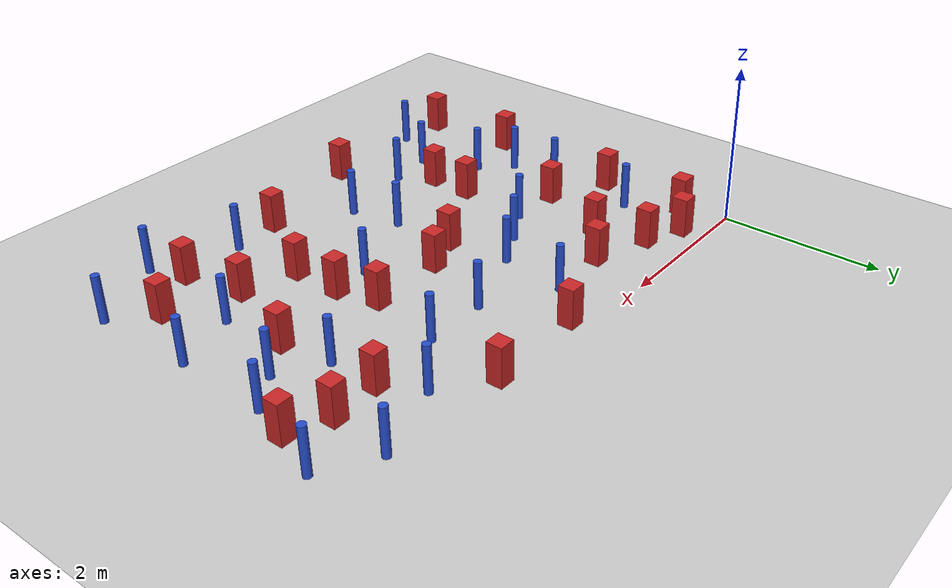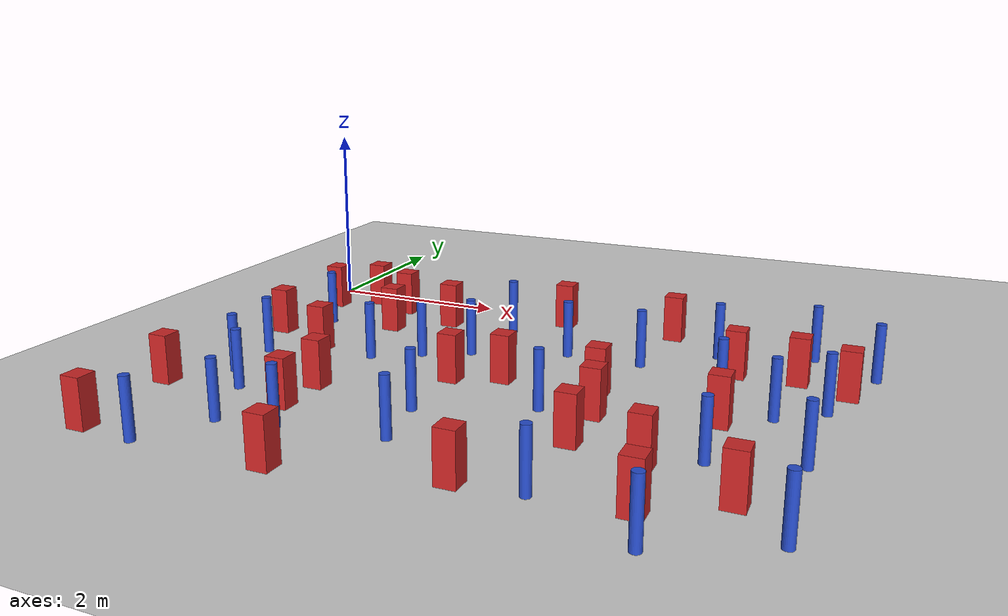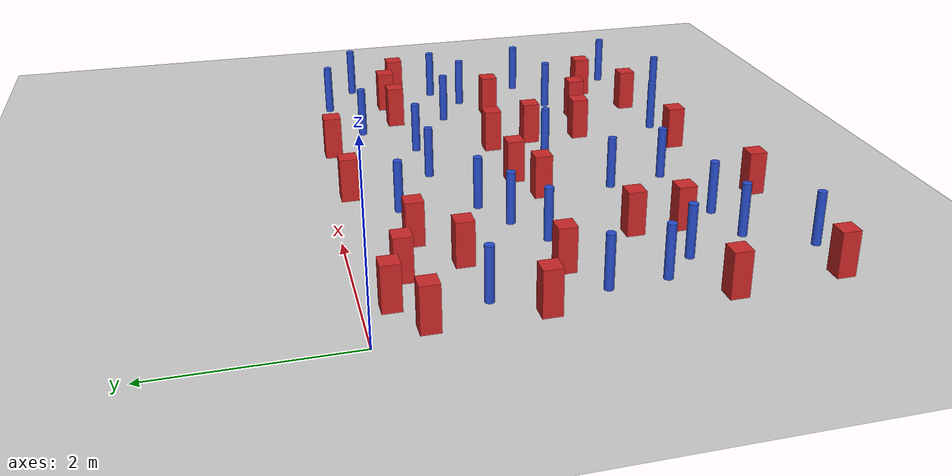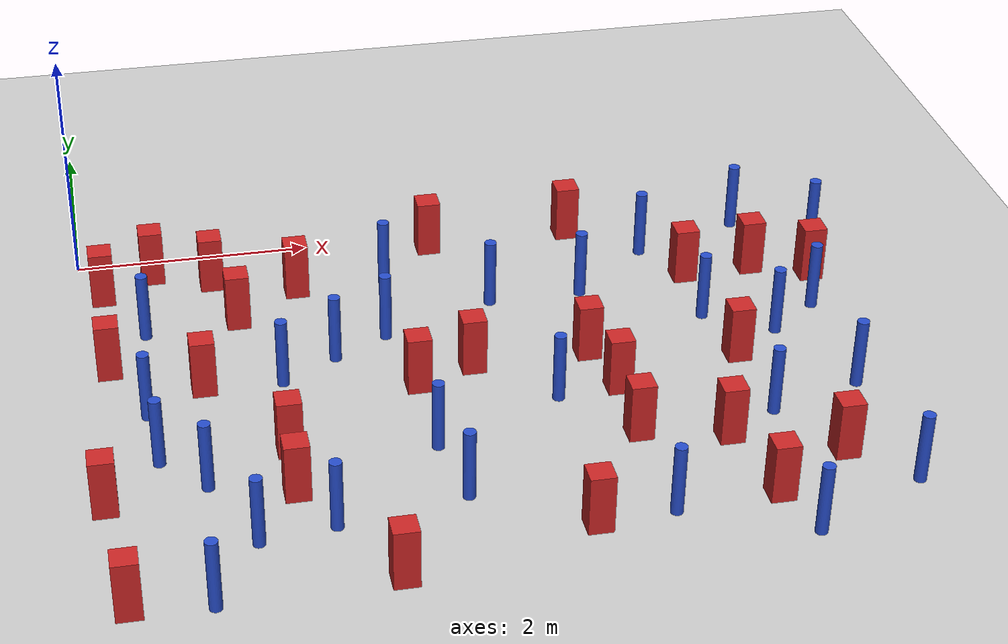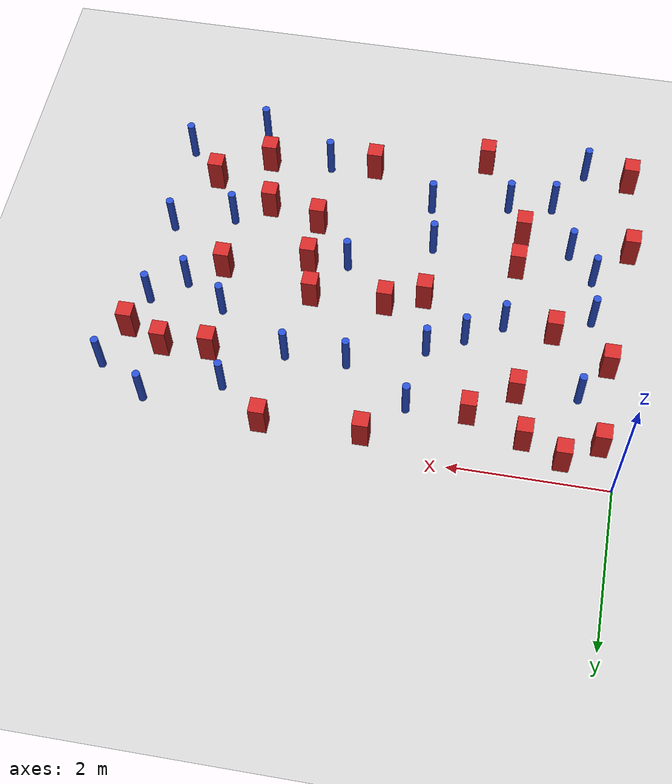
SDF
<sdf version="1.6">
 <world name="default">
  <model name="ground_plane">
   <static>1</static>
   <link name="link">
    <collision name="collision">
     <geometry><plane><normal>0 0 1</normal><size>100 100</size></plane></geometry>
     <surface><friction><ode><mu>100</mu><mu2>50</mu2></ode></friction></surface>
    </collision>
    <visual name="visual">
     <cast_shadows>0</cast_shadows>
     <geometry><plane><normal>0 0 1</normal><size>100 100</size></plane></geometry>
     <material>
      <ambient>1.0 1.0 1.0 1.0</ambient>
      <diffuse>0.8 0.8 0.8 1.0</diffuse>
      <specular>0.01 0.01 0.01 1.000000</specular>
     </material>
    </visual>
   </link>
  </model>
  <model name="pole_obstacle4">
   <static>true</static>
   <pose>6.12299116142 -4.23294634951 -9.47619616065e-06 5.49618799737e-07 2.36310414037e-07 -1.55090534814e-07</pose>
   <link name="link">
    <pose>0 0 0.3 0 -0 0</pose>
    <inertial>
     <mass>1</mass>
     <inertia><ixx>0.145833</ixx><ixy>0</ixy><ixz>0</ixz><iyy>0.145833</iyy><iyz>0</iyz><izz>0.125</izz></inertia>
    </inertial>
    <collision name="collision">
     <geometry><cylinder><radius>0.05</radius><length>.6</length></cylinder></geometry>
    </collision>
    <visual name="visual">
     <geometry><cylinder><radius>0.05</radius><length>.6</length></cylinder></geometry>
     <material>
      <script><name>Gazebo/Blue</name><uri>file://media/materials/scripts/gazebo.material</uri></script>
     </material>
    </visual>
   </link>
  </model>
  <model name="square_post_obstacle5">
   <static>true</static>
   <pose>5.68144355418 -3.79377628186 -6.11067671241e-07 -5.50515727128e-06 -8.79689657224e-07 2.37013304536e-05</pose>
   <link name="link">
    <pose>0 0 0.25 0 -0 0</pose>
    <inertial>
     <mass>100</mass>
     <inertia>
      <ixx>0.166667</ixx>
      <ixy>0</ixy>
      <ixz>0</ixz>
      <iyy>0.166667</iyy>
      <iyz>0</iyz>
      <izz>0.166667</izz>
     </inertia>
    </inertial>
    <collision name="collision"><geometry><box><size>.2 .2 .5</size></box></geometry></collision>
    <visual name="visual">
     <geometry><box><size>.2 .2 .5</size></box></geometry>
     <material>
      <script><name>Gazebo/Red</name><uri>file://media/materials/scripts/gazebo.material</uri></script>
     </material>
    </visual>
   </link>
  </model>
  <model name="pole_obstacle11">
   <static>true</static>
   <pose>5.85307790812 -0.320496310252 -9.47619616065e-06 5.49618799737e-07 2.36310414057e-07 -1.55090534802e-07</pose>
   <link name="link">
    <pose>0 0 0.3 0 -0 0</pose>
    <inertial>
     <mass>1</mass>
     <inertia><ixx>0.145833</ixx><ixy>0</ixy><ixz>0</ixz><iyy>0.145833</iyy><iyz>0</iyz><izz>0.125</izz></inertia>
    </inertial>
    <collision name="collision">
     <geometry><cylinder><radius>0.05</radius><length>.6</length></cylinder></geometry>
    </collision>
    <visual name="visual">
     <geometry><cylinder><radius>0.05</radius><length>.6</length></cylinder></geometry>
     <material>
      <script><name>Gazebo/Blue</name><uri>file://media/materials/scripts/gazebo.material</uri></script>
     </material>
    </visual>
   </link>
  </model>
  <model name="pole_obstacle18">
   <static>true</static>
   <pose>0.443897903303 -2.33822580704 -9.47619616065e-06 5.49618799738e-07 2.36310414065e-07 -1.55090534798e-07</pose>
   <link name="link">
    <pose>0 0 0.3 0 -0 0</pose>
    <inertial>
     <mass>1</mass>
     <inertia><ixx>0.145833</ixx><ixy>0</ixy><ixz>0</ixz><iyy>0.145833</iyy><iyz>0</iyz><izz>0.125</izz></inertia>
    </inertial>
    <collision name="collision">
     <geometry><cylinder><radius>0.05</radius><length>.6</length></cylinder></geometry>
    </collision>
    <visual name="visual">
     <geometry><cylinder><radius>0.05</radius><length>.6</length></cylinder></geometry>
     <material>
      <script><name>Gazebo/Blue</name><uri>file://media/materials/scripts/gazebo.material</uri></script>
     </material>
    </visual>
   </link>
  </model>
  <model name="square_post_obstacle15">
   <static>true</static>
   <pose>4.86988007356 -3.44141028213 -6.11067671241e-07 -5.50515727128e-06 -8.79689657224e-07 2.37013304536e-05</pose>
   <link name="link">
    <pose>0 0 0.25 0 -0 0</pose>
    <inertial>
     <mass>100</mass>
     <inertia>
      <ixx>0.166667</ixx>
      <ixy>0</ixy>
      <ixz>0</ixz>
      <iyy>0.166667</iyy>
      <iyz>0</iyz>
      <izz>0.166667</izz>
     </inertia>
    </inertial>
    <collision name="collision"><geometry><box><size>.2 .2 .5</size></box></geometry></collision>
    <visual name="visual">
     <geometry><box><size>.2 .2 .5</size></box></geometry>
     <material>
      <script><name>Gazebo/Red</name><uri>file://media/materials/scripts/gazebo.material</uri></script>
     </material>
    </visual>
   </link>
  </model>
  <model name="pole_obstacle21">
   <static>true</static>
   <pose>3.43718907386 -1.19930533443 -9.47619616065e-06 5.49618799737e-07 2.36310414072e-07 -1.55090534793e-07</pose>
   <link name="link">
    <pose>0 0 0.3 0 -0 0</pose>
    <inertial>
     <mass>1</mass>
     <inertia><ixx>0.145833</ixx><ixy>0</ixy><ixz>0</ixz><iyy>0.145833</iyy><iyz>0</iyz><izz>0.125</izz></inertia>
    </inertial>
    <collision name="collision">
     <geometry><cylinder><radius>0.05</radius><length>.6</length></cylinder></geometry>
    </collision>
    <visual name="visual">
     <geometry><cylinder><radius>0.05</radius><length>.6</length></cylinder></geometry>
     <material>
      <script><name>Gazebo/Blue</name><uri>file://media/materials/scripts/gazebo.material</uri></script>
     </material>
    </visual>
   </link>
  </model>
  <model name="pole_obstacle26">
   <static>true</static>
   <pose>1.7126449318 -3.97893781588 -9.47619616065e-06 5.49618799737e-07 2.36310414067e-07 -1.55090534795e-07</pose>
   <link name="link">
    <pose>0 0 0.3 0 -0 0</pose>
    <inertial>
     <mass>1</mass>
     <inertia><ixx>0.145833</ixx><ixy>0</ixy><ixz>0</ixz><iyy>0.145833</iyy><iyz>0</iyz><izz>0.125</izz></inertia>
    </inertial>
    <collision name="collision">
     <geometry><cylinder><radius>0.05</radius><length>.6</length></cylinder></geometry>
    </collision>
    <visual name="visual">
     <geometry><cylinder><radius>0.05</radius><length>.6</length></cylinder></geometry>
     <material>
      <script><name>Gazebo/Blue</name><uri>file://media/materials/scripts/gazebo.material</uri></script>
     </material>
    </visual>
   </link>
  </model>
  <model name="square_post_obstacle20">
   <static>true</static>
   <pose>5.17714673564 -1.09577643216 -6.11067671241e-07 -5.50515727128e-06 -8.79689657224e-07 2.37013304536e-05</pose>
   <link name="link">
    <pose>0 0 0.25 0 -0 0</pose>
    <inertial>
     <mass>100</mass>
     <inertia>
      <ixx>0.166667</ixx>
      <ixy>0</ixy>
      <ixz>0</ixz>
      <iyy>0.166667</iyy>
      <iyz>0</iyz>
      <izz>0.166667</izz>
     </inertia>
    </inertial>
    <collision name="collision"><geometry><box><size>.2 .2 .5</size></box></geometry></collision>
    <visual name="visual">
     <geometry><box><size>.2 .2 .5</size></box></geometry>
     <material>
      <script><name>Gazebo/Red</name><uri>file://media/materials/scripts/gazebo.material</uri></script>
     </material>
    </visual>
   </link>
  </model>
  <model name="pole_obstacle30">
   <static>true</static>
   <pose>3.68711121162 -2.68514495971 -9.47619616065e-06 5.49618799737e-07 2.36310414051e-07 -1.55090534807e-07</pose>
   <link name="link">
    <pose>0 0 0.3 0 -0 0</pose>
    <inertial>
     <mass>1</mass>
     <inertia><ixx>0.145833</ixx><ixy>0</ixy><ixz>0</ixz><iyy>0.145833</iyy><iyz>0</iyz><izz>0.125</izz></inertia>
    </inertial>
    <collision name="collision">
     <geometry><cylinder><radius>0.05</radius><length>.6</length></cylinder></geometry>
    </collision>
    <visual name="visual">
     <geometry><cylinder><radius>0.05</radius><length>.6</length></cylinder></geometry>
     <material>
      <script><name>Gazebo/Blue</name><uri>file://media/materials/scripts/gazebo.material</uri></script>
     </material>
    </visual>
   </link>
  </model>
  <model name="square_post_obstacle25">
   <static>true</static>
   <pose>4.06509293882 -2.11081079121 -6.11067671241e-07 -5.50515727128e-06 -8.79689657224e-07 2.37013304536e-05</pose>
   <link name="link">
    <pose>0 0 0.25 0 -0 0</pose>
    <inertial>
     <mass>100</mass>
     <inertia>
      <ixx>0.166667</ixx>
      <ixy>0</ixy>
      <ixz>0</ixz>
      <iyy>0.166667</iyy>
      <iyz>0</iyz>
      <izz>0.166667</izz>
     </inertia>
    </inertial>
    <collision name="collision"><geometry><box><size>.2 .2 .5</size></box></geometry></collision>
    <visual name="visual">
     <geometry><box><size>.2 .2 .5</size></box></geometry>
     <material>
      <script><name>Gazebo/Red</name><uri>file://media/materials/scripts/gazebo.material</uri></script>
     </material>
    </visual>
   </link>
  </model>
  <model name="pole_obstacle44">
   <static>true</static>
   <pose>0.751017771333 -4.70467274719 -9.47619616065e-06 5.49618799737e-07 2.36310414065e-07 -1.55090534796e-07</pose>
   <link name="link">
    <pose>0 0 0.3 0 -0 0</pose>
    <inertial>
     <mass>1</mass>
     <inertia><ixx>0.145833</ixx><ixy>0</ixy><ixz>0</ixz><iyy>0.145833</iyy><iyz>0</iyz><izz>0.125</izz></inertia>
    </inertial>
    <collision name="collision">
     <geometry><cylinder><radius>0.05</radius><length>.6</length></cylinder></geometry>
    </collision>
    <visual name="visual">
     <geometry><cylinder><radius>0.05</radius><length>.6</length></cylinder></geometry>
     <material>
      <script><name>Gazebo/Blue</name><uri>file://media/materials/scripts/gazebo.material</uri></script>
     </material>
    </visual>
   </link>
  </model>
  <model name="pole_obstacle50">
   <static>true</static>
   <pose>2.7331316334 -3.80267862826 -9.47619616065e-06 5.49618799737e-07 2.36310414051e-07 -1.55090534807e-07</pose>
   <link name="link">
    <pose>0 0 0.3 0 -0 0</pose>
    <inertial>
     <mass>1</mass>
     <inertia><ixx>0.145833</ixx><ixy>0</ixy><ixz>0</ixz><iyy>0.145833</iyy><iyz>0</iyz><izz>0.125</izz></inertia>
    </inertial>
    <collision name="collision">
     <geometry><cylinder><radius>0.05</radius><length>.6</length></cylinder></geometry>
    </collision>
    <visual name="visual">
     <geometry><cylinder><radius>0.05</radius><length>.6</length></cylinder></geometry>
     <material>
      <script><name>Gazebo/Blue</name><uri>file://media/materials/scripts/gazebo.material</uri></script>
     </material>
    </visual>
   </link>
  </model>
  <model name="square_post_obstacle43">
   <static>true</static>
   <pose>2.09700057839 -4.65238828174 -6.11067671241e-07 -5.50515727128e-06 -8.79689657224e-07 2.37013304536e-05</pose>
   <link name="link">
    <pose>0 0 0.25 0 -0 0</pose>
    <inertial>
     <mass>100</mass>
     <inertia>
      <ixx>0.166667</ixx>
      <ixy>0</ixy>
      <ixz>0</ixz>
      <iyy>0.166667</iyy>
      <iyz>0</iyz>
      <izz>0.166667</izz>
     </inertia>
    </inertial>
    <collision name="collision"><geometry><box><size>.2 .2 .5</size></box></geometry></collision>
    <visual name="visual">
     <geometry><box><size>.2 .2 .5</size></box></geometry>
     <material>
      <script><name>Gazebo/Red</name><uri>file://media/materials/scripts/gazebo.material</uri></script>
     </material>
    </visual>
   </link>
  </model>
  <model name="pole_obstacle62">
   <static>true</static>
   <pose>6.09280847344 -2.93658102104 -9.47619616065e-06 5.49618799738e-07 2.36310414051e-07 -1.55090534805e-07</pose>
   <link name="link">
    <pose>0 0 0.3 0 -0 0</pose>
    <inertial>
     <mass>1</mass>
     <inertia><ixx>0.145833</ixx><ixy>0</ixy><ixz>0</ixz><iyy>0.145833</iyy><iyz>0</iyz><izz>0.125</izz></inertia>
    </inertial>
    <collision name="collision">
     <geometry><cylinder><radius>0.05</radius><length>.6</length></cylinder></geometry>
    </collision>
    <visual name="visual">
     <geometry><cylinder><radius>0.05</radius><length>.6</length></cylinder></geometry>
     <material>
      <script><name>Gazebo/Blue</name><uri>file://media/materials/scripts/gazebo.material</uri></script>
     </material>
    </visual>
   </link>
  </model>
  <model name="square_post_obstacle48">
   <static>true</static>
   <pose>0.0523614347683 -3.46284286052 -6.11067671241e-07 -5.50515727128e-06 -8.79689657224e-07 2.37013304536e-05</pose>
   <link name="link">
    <pose>0 0 0.25 0 -0 0</pose>
    <inertial>
     <mass>100</mass>
     <inertia>
      <ixx>0.166667</ixx>
      <ixy>0</ixy>
      <ixz>0</ixz>
      <iyy>0.166667</iyy>
      <iyz>0</iyz>
      <izz>0.166667</izz>
     </inertia>
    </inertial>
    <collision name="collision"><geometry><box><size>.2 .2 .5</size></box></geometry></collision>
    <visual name="visual">
     <geometry><box><size>.2 .2 .5</size></box></geometry>
     <material>
      <script><name>Gazebo/Red</name><uri>file://media/materials/scripts/gazebo.material</uri></script>
     </material>
    </visual>
   </link>
  </model>
  <model name="pole_obstacle63">
   <static>true</static>
   <pose>4.91096232586 -0.634206017573 -9.47619616065e-06 5.49618799737e-07 2.36310414061e-07 -1.550905348e-07</pose>
   <link name="link">
    <pose>0 0 0.3 0 -0 0</pose>
    <inertial>
     <mass>1</mass>
     <inertia><ixx>0.145833</ixx><ixy>0</ixy><ixz>0</ixz><iyy>0.145833</iyy><iyz>0</iyz><izz>0.125</izz></inertia>
    </inertial>
    <collision name="collision">
     <geometry><cylinder><radius>0.05</radius><length>.6</length></cylinder></geometry>
    </collision>
    <visual name="visual">
     <geometry><cylinder><radius>0.05</radius><length>.6</length></cylinder></geometry>
     <material>
      <script><name>Gazebo/Blue</name><uri>file://media/materials/scripts/gazebo.material</uri></script>
     </material>
    </visual>
   </link>
  </model>
  <model name="pole_obstacle74">
   <static>true</static>
   <pose>0.510037440502 -1.18547803396 -9.47619616065e-06 5.49618799737e-07 2.36310414053e-07 -1.55090534803e-07</pose>
   <link name="link">
    <pose>0 0 0.3 0 -0 0</pose>
    <inertial>
     <mass>1</mass>
     <inertia><ixx>0.145833</ixx><ixy>0</ixy><ixz>0</ixz><iyy>0.145833</iyy><iyz>0</iyz><izz>0.125</izz></inertia>
    </inertial>
    <collision name="collision">
     <geometry><cylinder><radius>0.05</radius><length>.6</length></cylinder></geometry>
    </collision>
    <visual name="visual">
     <geometry><cylinder><radius>0.05</radius><length>.6</length></cylinder></geometry>
     <material>
      <script><name>Gazebo/Blue</name><uri>file://media/materials/scripts/gazebo.material</uri></script>
     </material>
    </visual>
   </link>
  </model>
  <model name="pole_obstacle76">
   <static>true</static>
   <pose>0.489646249229 -2.96681583218 -9.47619616065e-06 5.49618799738e-07 2.36310414066e-07 -1.55090534797e-07</pose>
   <link name="link">
    <pose>0 0 0.3 0 -0 0</pose>
    <inertial>
     <mass>1</mass>
     <inertia><ixx>0.145833</ixx><ixy>0</ixy><ixz>0</ixz><iyy>0.145833</iyy><iyz>0</iyz><izz>0.125</izz></inertia>
    </inertial>
    <collision name="collision">
     <geometry><cylinder><radius>0.05</radius><length>.6</length></cylinder></geometry>
    </collision>
    <visual name="visual">
     <geometry><cylinder><radius>0.05</radius><length>.6</length></cylinder></geometry>
     <material>
      <script><name>Gazebo/Blue</name><uri>file://media/materials/scripts/gazebo.material</uri></script>
     </material>
    </visual>
   </link>
  </model>
  <model name="square_post_obstacle67">
   <static>true</static>
   <pose>1.48921113778 -2.9828897796 -6.11067671241e-07 -5.50515727128e-06 -8.79689657224e-07 2.37013304536e-05</pose>
   <link name="link">
    <pose>0 0 0.25 0 -0 0</pose>
    <inertial>
     <mass>100</mass>
     <inertia>
      <ixx>0.166667</ixx>
      <ixy>0</ixy>
      <ixz>0</ixz>
      <iyy>0.166667</iyy>
      <iyz>0</iyz>
      <izz>0.166667</izz>
     </inertia>
    </inertial>
    <collision name="collision"><geometry><box><size>.2 .2 .5</size></box></geometry></collision>
    <visual name="visual">
     <geometry><box><size>.2 .2 .5</size></box></geometry>
     <material>
      <script><name>Gazebo/Red</name><uri>file://media/materials/scripts/gazebo.material</uri></script>
     </material>
    </visual>
   </link>
  </model>
  <model name="pole_obstacle86">
   <static>true</static>
   <pose>2.01733660389 -1.80045225481 -9.47619616065e-06 5.49618799737e-07 2.36310414066e-07 -1.55090534797e-07</pose>
   <link name="link">
    <pose>0 0 0.3 0 -0 0</pose>
    <inertial>
     <mass>1</mass>
     <inertia><ixx>0.145833</ixx><ixy>0</ixy><ixz>0</ixz><iyy>0.145833</iyy><iyz>0</iyz><izz>0.125</izz></inertia>
    </inertial>
    <collision name="collision">
     <geometry><cylinder><radius>0.05</radius><length>.6</length></cylinder></geometry>
    </collision>
    <visual name="visual">
     <geometry><cylinder><radius>0.05</radius><length>.6</length></cylinder></geometry>
     <material>
      <script><name>Gazebo/Blue</name><uri>file://media/materials/scripts/gazebo.material</uri></script>
     </material>
    </visual>
   </link>
  </model>
  <model name="square_post_obstacle81">
   <static>true</static>
   <pose>5.27068209981 -2.3657500207 -6.11067671241e-07 -5.50515727128e-06 -8.79689657224e-07 2.37013304536e-05</pose>
   <link name="link">
    <pose>0 0 0.25 0 -0 0</pose>
    <inertial>
     <mass>100</mass>
     <inertia>
      <ixx>0.166667</ixx>
      <ixy>0</ixy>
      <ixz>0</ixz>
      <iyy>0.166667</iyy>
      <iyz>0</iyz>
      <izz>0.166667</izz>
     </inertia>
    </inertial>
    <collision name="collision"><geometry><box><size>.2 .2 .5</size></box></geometry></collision>
    <visual name="visual">
     <geometry><box><size>.2 .2 .5</size></box></geometry>
     <material>
      <script><name>Gazebo/Red</name><uri>file://media/materials/scripts/gazebo.material</uri></script>
     </material>
    </visual>
   </link>
  </model>
  <model name="square_post_obstacle85">
   <static>true</static>
   <pose>4.19037227456 -2.63217803443 -6.11067671241e-07 -5.50515727128e-06 -8.79689657224e-07 2.37013304536e-05</pose>
   <link name="link">
    <pose>0 0 0.25 0 -0 0</pose>
    <inertial>
     <mass>100</mass>
     <inertia>
      <ixx>0.166667</ixx>
      <ixy>0</ixy>
      <ixz>0</ixz>
      <iyy>0.166667</iyy>
      <iyz>0</iyz>
      <izz>0.166667</izz>
     </inertia>
    </inertial>
    <collision name="collision"><geometry><box><size>.2 .2 .5</size></box></geometry></collision>
    <visual name="visual">
     <geometry><box><size>.2 .2 .5</size></box></geometry>
     <material>
      <script><name>Gazebo/Red</name><uri>file://media/materials/scripts/gazebo.material</uri></script>
     </material>
    </visual>
   </link>
  </model>
  <model name="square_post_obstacle89">
   <static>true</static>
   <pose>1.83401991134 -0.719261645037 -6.11067671241e-07 -5.50515727128e-06 -8.79689657224e-07 2.37013304536e-05</pose>
   <link name="link">
    <pose>0 0 0.25 0 -0 0</pose>
    <inertial>
     <mass>100</mass>
     <inertia>
      <ixx>0.166667</ixx>
      <ixy>0</ixy>
      <ixz>0</ixz>
      <iyy>0.166667</iyy>
      <iyz>0</iyz>
      <izz>0.166667</izz>
     </inertia>
    </inertial>
    <collision name="collision"><geometry><box><size>.2 .2 .5</size></box></geometry></collision>
    <visual name="visual">
     <geometry><box><size>.2 .2 .5</size></box></geometry>
     <material>
      <script><name>Gazebo/Red</name><uri>file://media/materials/scripts/gazebo.material</uri></script>
     </material>
    </visual>
   </link>
  </model>
  <model name="square_post_obstacle96">
   <static>true</static>
   <pose>6.26591263392 -1.26565749484 -6.11067671241e-07 -5.50515727128e-06 -8.79689657224e-07 2.37013304536e-05</pose>
   <link name="link">
    <pose>0 0 0.25 0 -0 0</pose>
    <inertial>
     <mass>100</mass>
     <inertia>
      <ixx>0.166667</ixx>
      <ixy>0</ixy>
      <ixz>0</ixz>
      <iyy>0.166667</iyy>
      <iyz>0</iyz>
      <izz>0.166667</izz>
     </inertia>
    </inertial>
    <collision name="collision"><geometry><box><size>.2 .2 .5</size></box></geometry></collision>
    <visual name="visual">
     <geometry><box><size>.2 .2 .5</size></box></geometry>
     <material>
      <script><name>Gazebo/Red</name><uri>file://media/materials/scripts/gazebo.material</uri></script>
     </material>
    </visual>
   </link>
  </model>
  <model name="pole_obstacle110">
   <static>true</static>
   <pose>5.17988541131 -4.68907345024 -9.47619616065e-06 5.49618799737e-07 2.36310414037e-07 -1.55090534814e-07</pose>
   <link name="link">
    <pose>0 0 0.3 0 -0 0</pose>
    <inertial>
     <mass>1</mass>
     <inertia><ixx>0.145833</ixx><ixy>0</ixy><ixz>0</ixz><iyy>0.145833</iyy><iyz>0</iyz><izz>0.125</izz></inertia>
    </inertial>
    <collision name="collision">
     <geometry><cylinder><radius>0.05</radius><length>.6</length></cylinder></geometry>
    </collision>
    <visual name="visual">
     <geometry><cylinder><radius>0.05</radius><length>.6</length></cylinder></geometry>
     <material>
      <script><name>Gazebo/Blue</name><uri>file://media/materials/scripts/gazebo.material</uri></script>
     </material>
    </visual>
   </link>
  </model>
  <model name="square_post_obstacle104">
   <static>true</static>
   <pose>0.152533842349 -4.63729083818 -6.11067671241e-07 -5.50515727128e-06 -8.79689657224e-07 2.37013304536e-05</pose>
   <link name="link">
    <pose>0 0 0.25 0 -0 0</pose>
    <inertial>
     <mass>100</mass>
     <inertia>
      <ixx>0.166667</ixx>
      <ixy>0</ixy>
      <ixz>0</ixz>
      <iyy>0.166667</iyy>
      <iyz>0</iyz>
      <izz>0.166667</izz>
     </inertia>
    </inertial>
    <collision name="collision"><geometry><box><size>.2 .2 .5</size></box></geometry></collision>
    <visual name="visual">
     <geometry><box><size>.2 .2 .5</size></box></geometry>
     <material>
      <script><name>Gazebo/Red</name><uri>file://media/materials/scripts/gazebo.material</uri></script>
     </material>
    </visual>
   </link>
  </model>
  <model name="square_post_obstacle107">
   <static>true</static>
   <pose>3.09733394144 -2.13232535725 -6.11067671241e-07 -5.50515727128e-06 -8.79689657224e-07 2.37013304536e-05</pose>
   <link name="link">
    <pose>0 0 0.25 0 -0 0</pose>
    <inertial>
     <mass>100</mass>
     <inertia>
      <ixx>0.166667</ixx>
      <ixy>0</ixy>
      <ixz>0</ixz>
      <iyy>0.166667</iyy>
      <iyz>0</iyz>
      <izz>0.166667</izz>
     </inertia>
    </inertial>
    <collision name="collision"><geometry><box><size>.2 .2 .5</size></box></geometry></collision>
    <visual name="visual">
     <geometry><box><size>.2 .2 .5</size></box></geometry>
     <material>
      <script><name>Gazebo/Red</name><uri>file://media/materials/scripts/gazebo.material</uri></script>
     </material>
    </visual>
   </link>
  </model>
  <model name="pole_obstacle113">
   <static>true</static>
   <pose>5.6973582241 -2.06979760427 -9.47619616065e-06 5.49618799738e-07 2.36310414051e-07 -1.55090534805e-07</pose>
   <link name="link">
    <pose>0 0 0.3 0 -0 0</pose>
    <inertial>
     <mass>1</mass>
     <inertia><ixx>0.145833</ixx><ixy>0</ixy><ixz>0</ixz><iyy>0.145833</iyy><iyz>0</iyz><izz>0.125</izz></inertia>
    </inertial>
    <collision name="collision">
     <geometry><cylinder><radius>0.05</radius><length>.6</length></cylinder></geometry>
    </collision>
    <visual name="visual">
     <geometry><cylinder><radius>0.05</radius><length>.6</length></cylinder></geometry>
     <material>
      <script><name>Gazebo/Blue</name><uri>file://media/materials/scripts/gazebo.material</uri></script>
     </material>
    </visual>
   </link>
  </model>
  <model name="square_post_obstacle116">
   <static>true</static>
   <pose>3.07302070448 -0.219725749059 -6.11067671241e-07 -5.50515727128e-06 -8.79689657224e-07 2.37013304536e-05</pose>
   <link name="link">
    <pose>0 0 0.25 0 -0 0</pose>
    <inertial>
     <mass>100</mass>
     <inertia>
      <ixx>0.166667</ixx>
      <ixy>0</ixy>
      <ixz>0</ixz>
      <iyy>0.166667</iyy>
      <iyz>0</iyz>
      <izz>0.166667</izz>
     </inertia>
    </inertial>
    <collision name="collision"><geometry><box><size>.2 .2 .5</size></box></geometry></collision>
    <visual name="visual">
     <geometry><box><size>.2 .2 .5</size></box></geometry>
     <material>
      <script><name>Gazebo/Red</name><uri>file://media/materials/scripts/gazebo.material</uri></script>
     </material>
    </visual>
   </link>
  </model>
  <model name="pole_obstacle120">
   <static>true</static>
   <pose>1.55201347518 -2.07580154624 -9.47619616065e-06 5.49618799737e-07 2.36310414062e-07 -1.55090534798e-07</pose>
   <link name="link">
    <pose>0 0 0.3 0 -0 0</pose>
    <inertial>
     <mass>1</mass>
     <inertia><ixx>0.145833</ixx><ixy>0</ixy><ixz>0</ixz><iyy>0.145833</iyy><iyz>0</iyz><izz>0.125</izz></inertia>
    </inertial>
    <collision name="collision">
     <geometry><cylinder><radius>0.05</radius><length>.6</length></cylinder></geometry>
    </collision>
    <visual name="visual">
     <geometry><cylinder><radius>0.05</radius><length>.6</length></cylinder></geometry>
     <material>
      <script><name>Gazebo/Blue</name><uri>file://media/materials/scripts/gazebo.material</uri></script>
     </material>
    </visual>
   </link>
  </model>
  <model name="square_post_obstacle126">
   <static>true</static>
   <pose>4.33382151981 -0.18964249268 -6.11067671241e-07 -5.50515727128e-06 -8.79689657224e-07 2.37013304536e-05</pose>
   <link name="link">
    <pose>0 0 0.25 0 -0 0</pose>
    <inertial>
     <mass>100</mass>
     <inertia>
      <ixx>0.166667</ixx>
      <ixy>0</ixy>
      <ixz>0</ixz>
      <iyy>0.166667</iyy>
      <iyz>0</iyz>
      <izz>0.166667</izz>
     </inertia>
    </inertial>
    <collision name="collision"><geometry><box><size>.2 .2 .5</size></box></geometry></collision>
    <visual name="visual">
     <geometry><box><size>.2 .2 .5</size></box></geometry>
     <material>
      <script><name>Gazebo/Red</name><uri>file://media/materials/scripts/gazebo.material</uri></script>
     </material>
    </visual>
   </link>
  </model>
  <model name="square_post_obstacle132">
   <static>true</static>
   <pose>2.613983125 -2.31813041973 -6.11067671241e-07 -5.50515727128e-06 -8.79689657224e-07 2.37013304536e-05</pose>
   <link name="link">
    <pose>0 0 0.25 0 -0 0</pose>
    <inertial>
     <mass>100</mass>
     <inertia>
      <ixx>0.166667</ixx>
      <ixy>0</ixy>
      <ixz>0</ixz>
      <iyy>0.166667</iyy>
      <iyz>0</iyz>
      <izz>0.166667</izz>
     </inertia>
    </inertial>
    <collision name="collision"><geometry><box><size>.2 .2 .5</size></box></geometry></collision>
    <visual name="visual">
     <geometry><box><size>.2 .2 .5</size></box></geometry>
     <material>
      <script><name>Gazebo/Red</name><uri>file://media/materials/scripts/gazebo.material</uri></script>
     </material>
    </visual>
   </link>
  </model>
  <model name="pole_obstacle140">
   <static>true</static>
   <pose>2.60231887838 -0.698715644626 -9.47619616065e-06 5.49618799738e-07 2.36310414075e-07 -1.55090534793e-07</pose>
   <link name="link">
    <pose>0 0 0.3 0 -0 0</pose>
    <inertial>
     <mass>1</mass>
     <inertia><ixx>0.145833</ixx><ixy>0</ixy><ixz>0</ixz><iyy>0.145833</iyy><iyz>0</iyz><izz>0.125</izz></inertia>
    </inertial>
    <collision name="collision">
     <geometry><cylinder><radius>0.05</radius><length>.6</length></cylinder></geometry>
    </collision>
    <visual name="visual">
     <geometry><cylinder><radius>0.05</radius><length>.6</length></cylinder></geometry>
     <material>
      <script><name>Gazebo/Blue</name><uri>file://media/materials/scripts/gazebo.material</uri></script>
     </material>
    </visual>
   </link>
  </model>
  <model name="pole_obstacle143">
   <static>true</static>
   <pose>6.48137072871 -0.704686777399 -9.47619616065e-06 5.49618799737e-07 2.36310414061e-07 -1.550905348e-07</pose>
   <link name="link">
    <pose>0 0 0.3 0 -0 0</pose>
    <inertial>
     <mass>1</mass>
     <inertia><ixx>0.145833</ixx><ixy>0</ixy><ixz>0</ixz><iyy>0.145833</iyy><iyz>0</iyz><izz>0.125</izz></inertia>
    </inertial>
    <collision name="collision">
     <geometry><cylinder><radius>0.05</radius><length>.6</length></cylinder></geometry>
    </collision>
    <visual name="visual">
     <geometry><cylinder><radius>0.05</radius><length>.6</length></cylinder></geometry>
     <material>
      <script><name>Gazebo/Blue</name><uri>file://media/materials/scripts/gazebo.material</uri></script>
     </material>
    </visual>
   </link>
  </model>
  <model name="pole_obstacle152">
   <static>true</static>
   <pose>2.47742028427 -1.55330439448 -9.47619616065e-06 5.49618799737e-07 2.36310414072e-07 -1.55090534793e-07</pose>
   <link name="link">
    <pose>0 0 0.3 0 -0 0</pose>
    <inertial>
     <mass>1</mass>
     <inertia><ixx>0.145833</ixx><ixy>0</ixy><ixz>0</ixz><iyy>0.145833</iyy><iyz>0</iyz><izz>0.125</izz></inertia>
    </inertial>
    <collision name="collision">
     <geometry><cylinder><radius>0.05</radius><length>.6</length></cylinder></geometry>
    </collision>
    <visual name="visual">
     <geometry><cylinder><radius>0.05</radius><length>.6</length></cylinder></geometry>
     <material>
      <script><name>Gazebo/Blue</name><uri>file://media/materials/scripts/gazebo.material</uri></script>
     </material>
    </visual>
   </link>
  </model>
  <model name="square_post_obstacle148">
   <static>true</static>
   <pose>4.1880295282 -3.27032325968 -6.11067671241e-07 -5.50515727128e-06 -8.79689657224e-07 2.37013304536e-05</pose>
   <link name="link">
    <pose>0 0 0.25 0 -0 0</pose>
    <inertial>
     <mass>100</mass>
     <inertia>
      <ixx>0.166667</ixx>
      <ixy>0</ixy>
      <ixz>0</ixz>
      <iyy>0.166667</iyy>
      <iyz>0</iyz>
      <izz>0.166667</izz>
     </inertia>
    </inertial>
    <collision name="collision"><geometry><box><size>.2 .2 .5</size></box></geometry></collision>
    <visual name="visual">
     <geometry><box><size>.2 .2 .5</size></box></geometry>
     <material>
      <script><name>Gazebo/Red</name><uri>file://media/materials/scripts/gazebo.material</uri></script>
     </material>
    </visual>
   </link>
  </model>
  <model name="square_post_obstacle158">
   <static>true</static>
   <pose>1.47493322382 -3.53379918468 -6.11067671241e-07 -5.50515727128e-06 -8.79689657224e-07 2.37013304536e-05</pose>
   <link name="link">
    <pose>0 0 0.25 0 -0 0</pose>
    <inertial>
     <mass>100</mass>
     <inertia>
      <ixx>0.166667</ixx>
      <ixy>0</ixy>
      <ixz>0</ixz>
      <iyy>0.166667</iyy>
      <iyz>0</iyz>
      <izz>0.166667</izz>
     </inertia>
    </inertial>
    <collision name="collision"><geometry><box><size>.2 .2 .5</size></box></geometry></collision>
    <visual name="visual">
     <geometry><box><size>.2 .2 .5</size></box></geometry>
     <material>
      <script><name>Gazebo/Red</name><uri>file://media/materials/scripts/gazebo.material</uri></script>
     </material>
    </visual>
   </link>
  </model>
  <model name="pole_obstacle168">
   <static>true</static>
   <pose>1.12816662226 -4.06296256708 -9.47619616065e-06 5.49618799737e-07 2.36310414061e-07 -1.550905348e-07</pose>
   <link name="link">
    <pose>0 0 0.3 0 -0 0</pose>
    <inertial>
     <mass>1</mass>
     <inertia><ixx>0.145833</ixx><ixy>0</ixy><ixz>0</ixz><iyy>0.145833</iyy><iyz>0</iyz><izz>0.125</izz></inertia>
    </inertial>
    <collision name="collision">
     <geometry><cylinder><radius>0.05</radius><length>.6</length></cylinder></geometry>
    </collision>
    <visual name="visual">
     <geometry><cylinder><radius>0.05</radius><length>.6</length></cylinder></geometry>
     <material>
      <script><name>Gazebo/Blue</name><uri>file://media/materials/scripts/gazebo.material</uri></script>
     </material>
    </visual>
   </link>
  </model>
  <model name="pole_obstacle172">
   <static>true</static>
   <pose>4.22801099173 -1.19568569596 -9.47619616065e-06 5.49618799738e-07 2.36310414071e-07 -1.55090534796e-07</pose>
   <link name="link">
    <pose>0 0 0.3 0 -0 0</pose>
    <inertial>
     <mass>1</mass>
     <inertia><ixx>0.145833</ixx><ixy>0</ixy><ixz>0</ixz><iyy>0.145833</iyy><iyz>0</iyz><izz>0.125</izz></inertia>
    </inertial>
    <collision name="collision">
     <geometry><cylinder><radius>0.05</radius><length>.6</length></cylinder></geometry>
    </collision>
    <visual name="visual">
     <geometry><cylinder><radius>0.05</radius><length>.6</length></cylinder></geometry>
     <material>
      <script><name>Gazebo/Blue</name><uri>file://media/materials/scripts/gazebo.material</uri></script>
     </material>
    </visual>
   </link>
  </model>
  <model name="pole_obstacle174">
   <static>true</static>
   <pose>5.1603682346 -1.7379974618 -9.47619616065e-06 5.49618799738e-07 2.36310414071e-07 -1.55090534796e-07</pose>
   <link name="link">
    <pose>0 0 0.3 0 -0 0</pose>
    <inertial>
     <mass>1</mass>
     <inertia><ixx>0.145833</ixx><ixy>0</ixy><ixz>0</ixz><iyy>0.145833</iyy><iyz>0</iyz><izz>0.125</izz></inertia>
    </inertial>
    <collision name="collision">
     <geometry><cylinder><radius>0.05</radius><length>.6</length></cylinder></geometry>
    </collision>
    <visual name="visual">
     <geometry><cylinder><radius>0.05</radius><length>.6</length></cylinder></geometry>
     <material>
      <script><name>Gazebo/Blue</name><uri>file://media/materials/scripts/gazebo.material</uri></script>
     </material>
    </visual>
   </link>
  </model>
  <model name="square_post_obstacle172">
   <static>true</static>
   <pose>5.78125198867 -1.06498045331 -6.11067671241e-07 -5.50515727128e-06 -8.79689657224e-07 2.37013304536e-05</pose>
   <link name="link">
    <pose>0 0 0.25 0 -0 0</pose>
    <inertial>
     <mass>100</mass>
     <inertia>
      <ixx>0.166667</ixx>
      <ixy>0</ixy>
      <ixz>0</ixz>
      <iyy>0.166667</iyy>
      <iyz>0</iyz>
      <izz>0.166667</izz>
     </inertia>
    </inertial>
    <collision name="collision"><geometry><box><size>.2 .2 .5</size></box></geometry></collision>
    <visual name="visual">
     <geometry><box><size>.2 .2 .5</size></box></geometry>
     <material>
      <script><name>Gazebo/Red</name><uri>file://media/materials/scripts/gazebo.material</uri></script>
     </material>
    </visual>
   </link>
  </model>
  <model name="square_post_obstacle176">
   <static>true</static>
   <pose>1.28875304225 -1.11708412607 -6.11067671241e-07 -5.50515727128e-06 -8.79689657224e-07 2.37013304536e-05</pose>
   <link name="link">
    <pose>0 0 0.25 0 -0 0</pose>
    <inertial>
     <mass>100</mass>
     <inertia>
      <ixx>0.166667</ixx>
      <ixy>0</ixy>
      <ixz>0</ixz>
      <iyy>0.166667</iyy>
      <iyz>0</iyz>
      <izz>0.166667</izz>
     </inertia>
    </inertial>
    <collision name="collision"><geometry><box><size>.2 .2 .5</size></box></geometry></collision>
    <visual name="visual">
     <geometry><box><size>.2 .2 .5</size></box></geometry>
     <material>
      <script><name>Gazebo/Red</name><uri>file://media/materials/scripts/gazebo.material</uri></script>
     </material>
    </visual>
   </link>
  </model>
  <model name="pole_obstacle181">
   <static>true</static>
   <pose>6.12520467683 -1.7504660879 -9.47619616065e-06 5.49618799738e-07 2.36310414071e-07 -1.55090534796e-07</pose>
   <link name="link">
    <pose>0 0 0.3 0 -0 0</pose>
    <inertial>
     <mass>1</mass>
     <inertia><ixx>0.145833</ixx><ixy>0</ixy><ixz>0</ixz><iyy>0.145833</iyy><iyz>0</iyz><izz>0.125</izz></inertia>
    </inertial>
    <collision name="collision">
     <geometry><cylinder><radius>0.05</radius><length>.6</length></cylinder></geometry>
    </collision>
    <visual name="visual">
     <geometry><cylinder><radius>0.05</radius><length>.6</length></cylinder></geometry>
     <material>
      <script><name>Gazebo/Blue</name><uri>file://media/materials/scripts/gazebo.material</uri></script>
     </material>
    </visual>
   </link>
  </model>
  <model name="square_post_obstacle183">
   <static>true</static>
   <pose>0.916143624042 -2.04598521079 -6.11067671241e-07 -5.50515727128e-06 -8.79689657224e-07 2.37013304536e-05</pose>
   <link name="link">
    <pose>0 0 0.25 0 -0 0</pose>
    <inertial>
     <mass>100</mass>
     <inertia>
      <ixx>0.166667</ixx>
      <ixy>0</ixy>
      <ixz>0</ixz>
      <iyy>0.166667</iyy>
      <iyz>0</iyz>
      <izz>0.166667</izz>
     </inertia>
    </inertial>
    <collision name="collision"><geometry><box><size>.2 .2 .5</size></box></geometry></collision>
    <visual name="visual">
     <geometry><box><size>.2 .2 .5</size></box></geometry>
     <material>
      <script><name>Gazebo/Red</name><uri>file://media/materials/scripts/gazebo.material</uri></script>
     </material>
    </visual>
   </link>
  </model>
  <model name="square_post_obstacle186">
   <static>true</static>
   <pose>3.59365744438 -4.31549111775 -6.11067671241e-07 -5.50515727128e-06 -8.79689657224e-07 2.37013304536e-05</pose>
   <link name="link">
    <pose>0 0 0.25 0 -0 0</pose>
    <inertial>
     <mass>100</mass>
     <inertia>
      <ixx>0.166667</ixx>
      <ixy>0</ixy>
      <ixz>0</ixz>
      <iyy>0.166667</iyy>
      <iyz>0</iyz>
      <izz>0.166667</izz>
     </inertia>
    </inertial>
    <collision name="collision"><geometry><box><size>.2 .2 .5</size></box></geometry></collision>
    <visual name="visual">
     <geometry><box><size>.2 .2 .5</size></box></geometry>
     <material>
      <script><name>Gazebo/Red</name><uri>file://media/materials/scripts/gazebo.material</uri></script>
     </material>
    </visual>
   </link>
  </model>
  <model name="pole_obstacle188">
   <static>true</static>
   <pose>4.20564546786 -4.26809021121 -9.47619616065e-06 5.49618799737e-07 2.36310414037e-07 -1.55090534814e-07</pose>
   <link name="link">
    <pose>0 0 0.3 0 -0 0</pose>
    <inertial>
     <mass>1</mass>
     <inertia><ixx>0.145833</ixx><ixy>0</ixy><ixz>0</ixz><iyy>0.145833</iyy><iyz>0</iyz><izz>0.125</izz></inertia>
    </inertial>
    <collision name="collision">
     <geometry><cylinder><radius>0.05</radius><length>.6</length></cylinder></geometry>
    </collision>
    <visual name="visual">
     <geometry><cylinder><radius>0.05</radius><length>.6</length></cylinder></geometry>
     <material>
      <script><name>Gazebo/Blue</name><uri>file://media/materials/scripts/gazebo.material</uri></script>
     </material>
    </visual>
   </link>
  </model>
  <model name="square_post_obstacle201">
   <static>true</static>
   <pose>0.183820855142 -1.67079916801 -6.11067671241e-07 -5.50515727128e-06 -8.79689657224e-07 2.37013304536e-05</pose>
   <link name="link">
    <pose>0 0 0.25 0 -0 0</pose>
    <inertial>
     <mass>100</mass>
     <inertia>
      <ixx>0.166667</ixx>
      <ixy>0</ixy>
      <ixz>0</ixz>
      <iyy>0.166667</iyy>
      <iyz>0</iyz>
      <izz>0.166667</izz>
     </inertia>
    </inertial>
    <collision name="collision"><geometry><box><size>.2 .2 .5</size></box></geometry></collision>
    <visual name="visual">
     <geometry><box><size>.2 .2 .5</size></box></geometry>
     <material>
      <script><name>Gazebo/Red</name><uri>file://media/materials/scripts/gazebo.material</uri></script>
     </material>
    </visual>
   </link>
  </model>
  <model name="square_post_obstacle206">
   <static>true</static>
   <pose>0.19260549044 -0.547630975893 -6.11067671241e-07 -5.50515727128e-06 -8.79689657224e-07 2.37013304536e-05</pose>
   <link name="link">
    <pose>0 0 0.25 0 -0 0</pose>
    <inertial>
     <mass>100</mass>
     <inertia>
      <ixx>0.166667</ixx>
      <ixy>0</ixy>
      <ixz>0</ixz>
      <iyy>0.166667</iyy>
      <iyz>0</iyz>
      <izz>0.166667</izz>
     </inertia>
    </inertial>
    <collision name="collision"><geometry><box><size>.2 .2 .5</size></box></geometry></collision>
    <visual name="visual">
     <geometry><box><size>.2 .2 .5</size></box></geometry>
     <material>
      <script><name>Gazebo/Red</name><uri>file://media/materials/scripts/gazebo.material</uri></script>
     </material>
    </visual>
   </link>
  </model>
  <model name="pole_obstacle197">
   <static>true</static>
   <pose>0.826861681149 -3.33656189124 -9.47619616065e-06 5.49618799737e-07 2.36310414066e-07 -1.55090534797e-07</pose>
   <link name="link">
    <pose>0 0 0.3 0 -0 0</pose>
    <inertial>
     <mass>1</mass>
     <inertia><ixx>0.145833</ixx><ixy>0</ixy><ixz>0</ixz><iyy>0.145833</iyy><iyz>0</iyz><izz>0.125</izz></inertia>
    </inertial>
    <collision name="collision">
     <geometry><cylinder><radius>0.05</radius><length>.6</length></cylinder></geometry>
    </collision>
    <visual name="visual">
     <geometry><cylinder><radius>0.05</radius><length>.6</length></cylinder></geometry>
     <material>
      <script><name>Gazebo/Blue</name><uri>file://media/materials/scripts/gazebo.material</uri></script>
     </material>
    </visual>
   </link>
  </model>
  <model name="pole_obstacle207">
   <static>true</static>
   <pose>5.31841712941 -3.17862436331 -9.47619616065e-06 5.49618799738e-07 2.36310414051e-07 -1.55090534805e-07</pose>
   <link name="link">
    <pose>0 0 0.3 0 -0 0</pose>
    <inertial>
     <mass>1</mass>
     <inertia><ixx>0.145833</ixx><ixy>0</ixy><ixz>0</ixz><iyy>0.145833</iyy><iyz>0</iyz><izz>0.125</izz></inertia>
    </inertial>
    <collision name="collision">
     <geometry><cylinder><radius>0.05</radius><length>.6</length></cylinder></geometry>
    </collision>
    <visual name="visual">
     <geometry><cylinder><radius>0.05</radius><length>.6</length></cylinder></geometry>
     <material>
      <script><name>Gazebo/Blue</name><uri>file://media/materials/scripts/gazebo.material</uri></script>
     </material>
    </visual>
   </link>
  </model>
  <model name="square_post_obstacle208">
   <static>true</static>
   <pose>5.02493478199 -4.20855778045 -6.11067671241e-07 -5.50515727128e-06 -8.79689657224e-07 2.37013304536e-05</pose>
   <link name="link">
    <pose>0 0 0.25 0 -0 0</pose>
    <inertial>
     <mass>100</mass>
     <inertia>
      <ixx>0.166667</ixx>
      <ixy>0</ixy>
      <ixz>0</ixz>
      <iyy>0.166667</iyy>
      <iyz>0</iyz>
      <izz>0.166667</izz>
     </inertia>
    </inertial>
    <collision name="collision"><geometry><box><size>.2 .2 .5</size></box></geometry></collision>
    <visual name="visual">
     <geometry><box><size>.2 .2 .5</size></box></geometry>
     <material>
      <script><name>Gazebo/Red</name><uri>file://media/materials/scripts/gazebo.material</uri></script>
     </material>
    </visual>
   </link>
  </model>
  <model name="square_post_obstacle211">
   <static>true</static>
   <pose>1.12628508785 -0.474790911974 -6.11067671241e-07 -5.50515727128e-06 -8.79689657224e-07 2.37013304536e-05</pose>
   <link name="link">
    <pose>0 0 0.25 0 -0 0</pose>
    <inertial>
     <mass>100</mass>
     <inertia>
      <ixx>0.166667</ixx>
      <ixy>0</ixy>
      <ixz>0</ixz>
      <iyy>0.166667</iyy>
      <iyz>0</iyz>
      <izz>0.166667</izz>
     </inertia>
    </inertial>
    <collision name="collision"><geometry><box><size>.2 .2 .5</size></box></geometry></collision>
    <visual name="visual">
     <geometry><box><size>.2 .2 .5</size></box></geometry>
     <material>
      <script><name>Gazebo/Red</name><uri>file://media/materials/scripts/gazebo.material</uri></script>
     </material>
    </visual>
   </link>
  </model>
  <model name="square_post_obstacle212">
   <static>true</static>
   <pose>0.632921822165 -0.274359826883 -6.11067671241e-07 -5.50515727128e-06 -8.79689657224e-07 2.37013304536e-05</pose>
   <link name="link">
    <pose>0 0 0.25 0 -0 0</pose>
    <inertial>
     <mass>100</mass>
     <inertia>
      <ixx>0.166667</ixx>
      <ixy>0</ixy>
      <ixz>0</ixz>
      <iyy>0.166667</iyy>
      <iyz>0</iyz>
      <izz>0.166667</izz>
     </inertia>
    </inertial>
    <collision name="collision"><geometry><box><size>.2 .2 .5</size></box></geometry></collision>
    <visual name="visual">
     <geometry><box><size>.2 .2 .5</size></box></geometry>
     <material>
      <script><name>Gazebo/Red</name><uri>file://media/materials/scripts/gazebo.material</uri></script>
     </material>
    </visual>
   </link>
  </model>
  <model name="pole_obstacle211">
   <static>true</static>
   <pose>2.62207393675 -3.14936120535 -9.47619616065e-06 5.49618799737e-07 2.36310414051e-07 -1.55090534807e-07</pose>
   <link name="link">
    <pose>0 0 0.3 0 -0 0</pose>
    <inertial>
     <mass>1</mass>
     <inertia><ixx>0.145833</ixx><ixy>0</ixy><ixz>0</ixz><iyy>0.145833</iyy><iyz>0</iyz><izz>0.125</izz></inertia>
    </inertial>
    <collision name="collision">
     <geometry><cylinder><radius>0.05</radius><length>.6</length></cylinder></geometry>
    </collision>
    <visual name="visual">
     <geometry><cylinder><radius>0.05</radius><length>.6</length></cylinder></geometry>
     <material>
      <script><name>Gazebo/Blue</name><uri>file://media/materials/scripts/gazebo.material</uri></script>
     </material>
    </visual>
   </link>
  </model>
 </world>
</sdf>
